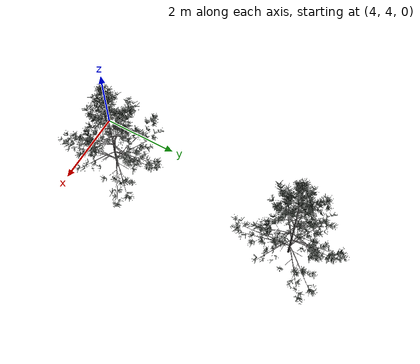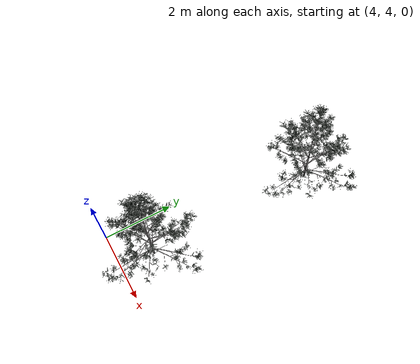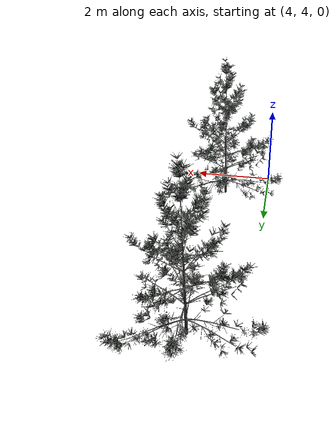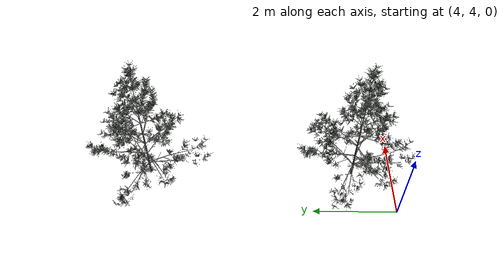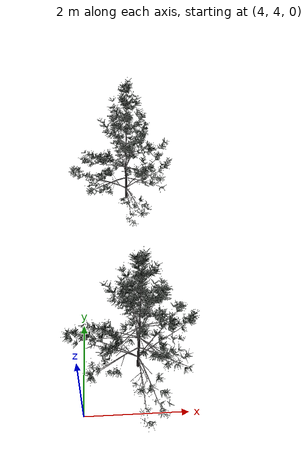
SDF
<?xml version="1.0"?>
<sdf version="1.4">
  <world name="default">
    <scene>
      <shadows>0</shadows>
    </scene>
    <physics type="ode">
      <gravity>0 0 -9.81</gravity>
      <ode>
        <solver>
          <type>quick</type>
          <iters>10</iters>
          <sor>1.3</sor>
        </solver>
        <constraints>
          <cfm>0.0</cfm>
          <erp>0.2</erp>
          <contact_max_correcting_vel>10</contact_max_correcting_vel>
          <contact_surface_layer>0.001</contact_surface_layer>
        </constraints>
      </ode>
      <max_step_size>0.001</max_step_size>
    </physics>

    <model name="forest">
      <link name="tree0">
        <pose>5 5 0 0 0 0</pose>
        <collision name="collision">
          <geometry>
            <mesh>
              <uri>file://tree.dae</uri>
              <scale>1 1 1</scale>
            </mesh>
          </geometry>
        </collision>
        <visual name="visual">
          <geometry>
            <mesh>
              <uri>file://tree.dae</uri>
              <scale>1 1 1</scale>
            </mesh>
          </geometry>
          <cast_shadows>false</cast_shadows>
        </visual>
      </link>
      <link name="tree1">
        <pose>5 10 0 0 0 0</pose>
        <collision name="collision">
          <geometry>
            <mesh>
              <uri>file://tree.dae</uri>
              <scale>1 1 1</scale>
            </mesh>
          </geometry>
        </collision>
        <visual name="visual">
          <geometry>
            <mesh>
              <uri>file://tree.dae</uri>
              <scale>1 1 1</scale>
            </mesh>
          </geometry>
          <cast_shadows>false</cast_shadows>
        </visual>
      </link>
      <static>true</static>
    </model>

  </world>
</sdf>
